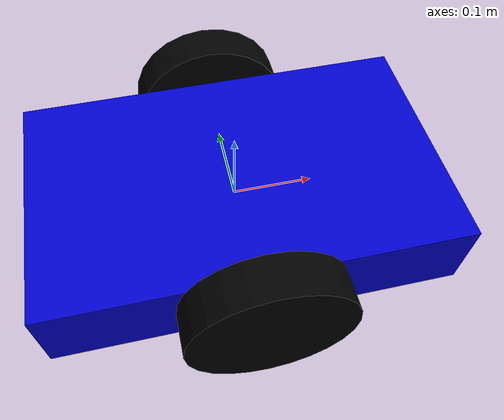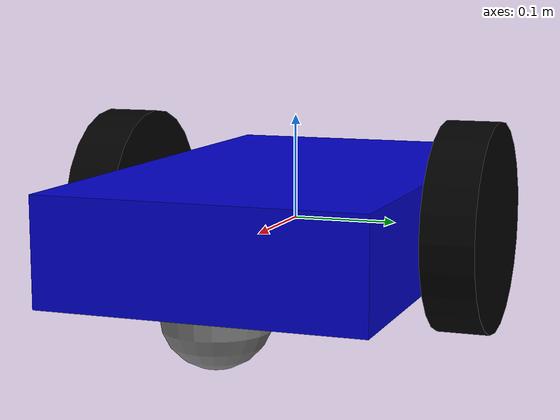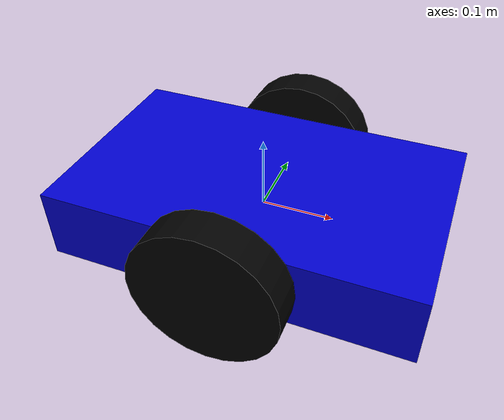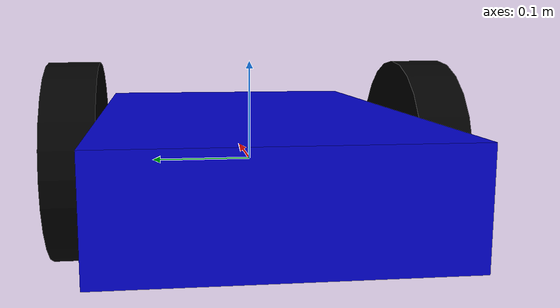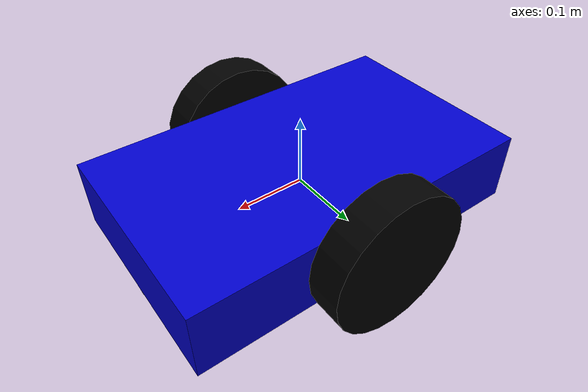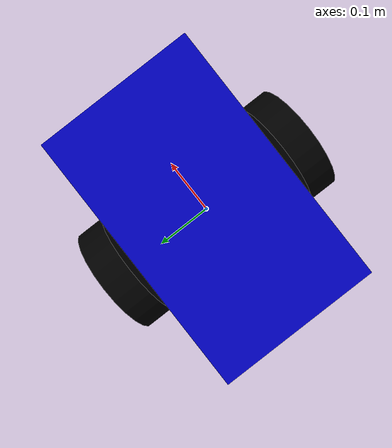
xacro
<?xml version="1.0"?>
<robot xmlns:xacro="http://www.ros.org/wiki/xacro" name="test_robot">

  <!-- Base Link -->
  <link name="base_link">
    <visual>
      <geometry>
        <box size="0.5 0.3 0.1"/>
      </geometry>
      <material name="blue">
        <color rgba="0 0 0.8 1"/>
      </material>
    </visual>
    <collision>
      <geometry>
        <box size="0.5 0.3 0.1"/>
      </geometry>
    </collision>
    <inertial>
      <mass value="10"/>
      <inertia ixx="0.1" ixy="0" ixz="0" iyy="0.1" iyz="0" izz="0.1"/>
    </inertial>
  </link>

  <!-- Left Wheel -->
  <link name="left_wheel">
    <visual>
      <geometry>
        <cylinder radius="0.1" length="0.05"/>
      </geometry>
      <material name="black">
        <color rgba="0 0 0 1"/>
      </material>
    </visual>
    <collision>
      <geometry>
        <cylinder radius="0.1" length="0.05"/>
      </geometry>
    </collision>
    <inertial>
      <mass value="1"/>
      <inertia ixx="0.01" ixy="0" ixz="0" iyy="0.01" iyz="0" izz="0.01"/>
    </inertial>
  </link>

  <joint name="left_wheel_joint" type="continuous">
    <parent link="base_link"/>
    <child link="left_wheel"/>
    <origin xyz="0 0.175 0" rpy="-1.5707 0 0"/>
    <axis xyz="0 0 1"/>
  </joint>

  <!-- Right Wheel -->
  <link name="right_wheel">
    <visual>
      <geometry>
        <cylinder radius="0.1" length="0.05"/>
      </geometry>
      <material name="black">
        <color rgba="0 0 0 1"/>
      </material>
    </visual>
    <collision>
      <geometry>
        <cylinder radius="0.1" length="0.05"/>
      </geometry>
    </collision>
    <inertial>
      <mass value="1"/>
      <inertia ixx="0.01" ixy="0" ixz="0" iyy="0.01" iyz="0" izz="0.01"/>
    </inertial>
  </link>

  <joint name="right_wheel_joint" type="continuous">
    <parent link="base_link"/>
    <child link="right_wheel"/>
    <origin xyz="0 -0.175 0" rpy="-1.5707 0 0"/>
    <axis xyz="0 0 1"/>
  </joint>

  <!-- Caster Wheel -->
  <link name="caster_wheel">
    <visual>
      <geometry>
        <sphere radius="0.05"/>
      </geometry>
      <material name="grey">
        <color rgba="0.5 0.5 0.5 1"/>
      </material>
    </visual>
    <collision>
      <geometry>
        <sphere radius="0.05"/>
      </geometry>
      <surface>
        <friction>
          <ode>
            <mu>0.0</mu>
            <mu2>0.0</mu2>
          </ode>
        </friction>
      </surface>
    </collision>
    <inertial>
      <mass value="0.5"/>
      <inertia ixx="0.001" ixy="0" ixz="0" iyy="0.001" iyz="0" izz="0.001"/>
    </inertial>
  </link>

  <joint name="caster_wheel_joint" type="fixed">
    <parent link="base_link"/>
    <child link="caster_wheel"/>
    <origin xyz="0.2 0 -0.05" rpy="0 0 0"/>
  </joint>

  <!-- Gazebo Fortress Diff Drive Plugin -->
  <gazebo>
    <plugin filename="gz-sim-diff-drive-system" name="gz::sim::systems::DiffDrive">
      <left_joint>left_wheel_joint</left_joint>
      <right_joint>right_wheel_joint</right_joint>
      <wheel_separation>0.35</wheel_separation>
      <wheel_radius>0.1</wheel_radius>
      <odom_publish_frequency>50</odom_publish_frequency>
      <topic>cmd_vel</topic>
    </plugin>
  </gazebo>

</robot>
